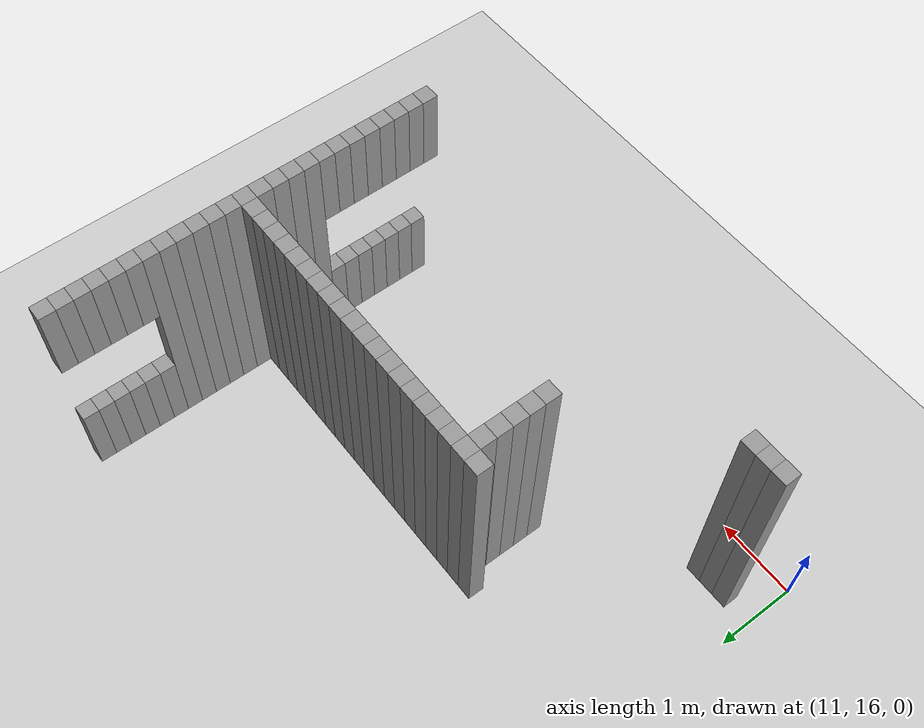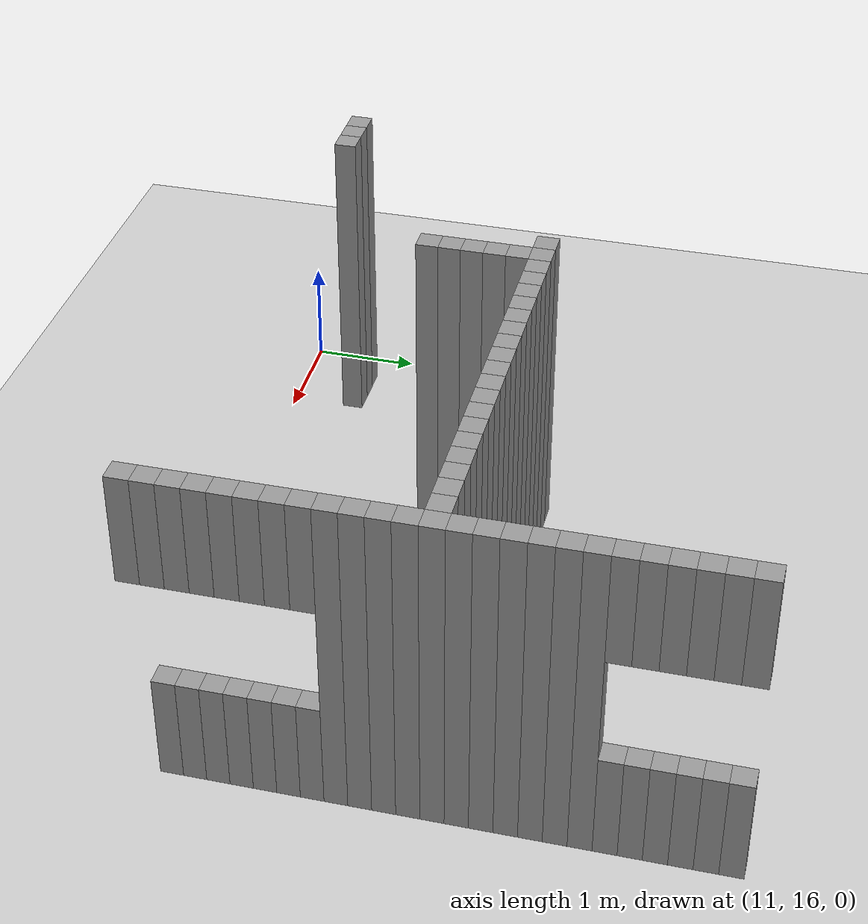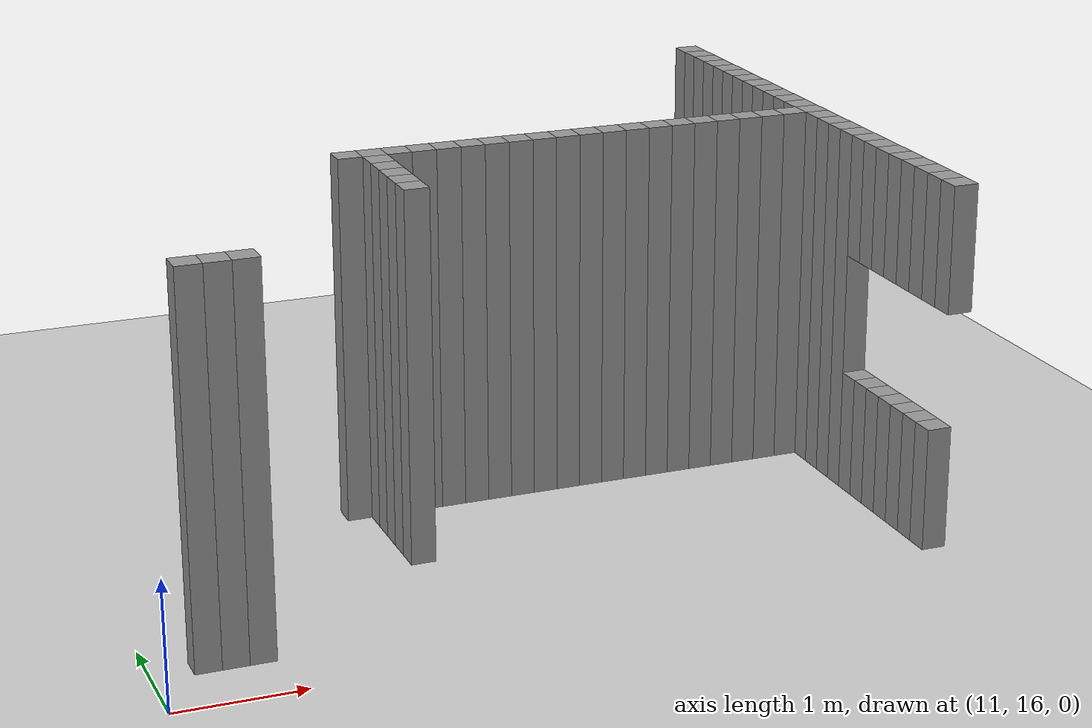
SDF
<sdf version="1.7">
 <world name="default">
  <model name="ground_plane">
   <static>1</static>
   <link name="link">
    <collision name="collision">
     <geometry><plane><normal>0 0 1</normal><size>100 100</size></plane></geometry>
     <surface>
      <contact><collide_bitmask>65535</collide_bitmask></contact>
      <friction><ode><mu>100</mu><mu2>50</mu2></ode></friction>
     </surface>
    </collision>
    <visual name="visual">
     <cast_shadows>0</cast_shadows>
     <geometry><plane><normal>0 0 1</normal><size>100 100</size></plane></geometry>
     <material>
      <script><uri>file://media/materials/scripts/gazebo.material</uri><name>Gazebo/Grey</name></script>
     </material>
    </visual>
   </link>
  </model>
  <model name="05222">
   <pose>-1 -1 0 0 -0 0</pose>
   <link name="Wall_813">
    <collision name="Wall_813_Collision">
     <geometry><box><size>0.2 0.2 1.0</size></box></geometry>
     <pose>0 0 2.5 0 -0 0</pose>
    </collision>
    <visual name="Wall_813_Visual">
     <pose>0 0 2.5 0 -0 0</pose>
     <geometry><box><size>0.2 0.2 1.0</size></box></geometry>
     <material>
      <script><uri>file://media/materials/scripts/gazebo.material</uri><name>Gazebo/Grey</name></script>
      <ambient>1 1 1 1</ambient>
     </material>
     <meta><layer>0</layer></meta>
    </visual>
    <pose>18.2 17.400000000000002 0 0 -0 0</pose>
   </link>
   <link name="Window_812">
    <collision name="Window_812_Collision">
     <geometry><box><size>0.2 0.2 1.0</size></box></geometry>
     <pose>0 0 1.5 0 -0 0</pose>
    </collision>
    <visual name="Wall_813_Visual">
     <pose>0 0 2.5 0 -0 0</pose>
     <geometry><box><size>0.2 0.2 1.0</size></box></geometry>
     <material>
      <script><uri>file://media/materials/scripts/gazebo.material</uri><name>Gazebo/Grey</name></script>
      <ambient>1 1 1 1</ambient>
     </material>
     <meta><layer>0</layer></meta>
    </visual>
    <pose>18.2 17.400000000000002 0 0 -0 0</pose>
   </link>
   <link name="Wall_843">
    <collision name="Wall_843_Collision">
     <geometry><box><size>0.2 0.2 3</size></box></geometry>
     <pose>0 0 1.5 0 -0 0</pose>
    </collision>
    <visual name="Wall_843_Visual">
     <pose>0 0 1.5 0 -0 0</pose>
     <geometry><box><size>0.2 0.2 3</size></box></geometry>
     <material>
      <script><uri>file://media/materials/scripts/gazebo.material</uri><name>Gazebo/Grey</name></script>
      <ambient>1 1 1 1</ambient>
     </material>
     <meta><layer>0</layer></meta>
    </visual>
    <pose>12.4 17.6 0 0 -0 0</pose>
   </link>
   <link name="Wall_844">
    <collision name="Wall_844_Collision">
     <geometry><box><size>0.2 0.2 3</size></box></geometry>
     <pose>0 0 1.5 0 -0 0</pose>
    </collision>
    <visual name="Wall_844_Visual">
     <pose>0 0 1.5 0 -0 0</pose>
     <geometry><box><size>0.2 0.2 3</size></box></geometry>
     <material>
      <script><uri>file://media/materials/scripts/gazebo.material</uri><name>Gazebo/Grey</name></script>
      <ambient>1 1 1 1</ambient>
     </material>
     <meta><layer>0</layer></meta>
    </visual>
    <pose>12.600000000000001 17.6 0 0 -0 0</pose>
   </link>
   <link name="Wall_845">
    <collision name="Wall_845_Collision">
     <geometry><box><size>0.2 0.2 3</size></box></geometry>
     <pose>0 0 1.5 0 -0 0</pose>
    </collision>
    <visual name="Wall_845_Visual">
     <pose>0 0 1.5 0 -0 0</pose>
     <geometry><box><size>0.2 0.2 3</size></box></geometry>
     <material>
      <script><uri>file://media/materials/scripts/gazebo.material</uri><name>Gazebo/Grey</name></script>
      <ambient>1 1 1 1</ambient>
     </material>
     <meta><layer>0</layer></meta>
    </visual>
    <pose>12.8 17.6 0 0 -0 0</pose>
   </link>
   <link name="Wall_846">
    <collision name="Wall_846_Collision">
     <geometry><box><size>0.2 0.2 1.0</size></box></geometry>
     <pose>0 0 0.5 0 -0 0</pose>
    </collision>
    <visual name="Wall_846_Visual">
     <pose>0 0 0.5 0 -0 0</pose>
     <geometry><box><size>0.2 0.2 1.0</size></box></geometry>
     <material>
      <script><uri>file://media/materials/scripts/gazebo.material</uri><name>Gazebo/Grey</name></script>
      <ambient>1 1 1 1</ambient>
     </material>
     <meta><layer>0</layer></meta>
    </visual>
    <pose>18.2 17.6 0 0 -0 0</pose>
   </link>
   <link name="Wall_847">
    <collision name="Wall_847_Collision">
     <geometry><box><size>0.2 0.2 1.0</size></box></geometry>
     <pose>0 0 2.5 0 -0 0</pose>
    </collision>
    <visual name="Wall_847_Visual">
     <pose>0 0 2.5 0 -0 0</pose>
     <geometry><box><size>0.2 0.2 1.0</size></box></geometry>
     <material>
      <script><uri>file://media/materials/scripts/gazebo.material</uri><name>Gazebo/Grey</name></script>
      <ambient>1 1 1 1</ambient>
     </material>
     <meta><layer>0</layer></meta>
    </visual>
    <pose>18.2 17.6 0 0 -0 0</pose>
   </link>
   <link name="Window_846">
    <collision name="Window_846_Collision">
     <geometry><box><size>0.2 0.2 1.0</size></box></geometry>
     <pose>0 0 1.5 0 -0 0</pose>
    </collision>
    <visual name="Wall_847_Visual">
     <pose>0 0 2.5 0 -0 0</pose>
     <geometry><box><size>0.2 0.2 1.0</size></box></geometry>
     <material>
      <script><uri>file://media/materials/scripts/gazebo.material</uri><name>Gazebo/Grey</name></script>
      <ambient>1 1 1 1</ambient>
     </material>
     <meta><layer>0</layer></meta>
    </visual>
    <pose>18.2 17.6 0 0 -0 0</pose>
   </link>
   <link name="Wall_867">
    <collision name="Wall_867_Collision">
     <geometry><box><size>0.2 0.2 1.0</size></box></geometry>
     <pose>0 0 0.5 0 -0 0</pose>
    </collision>
    <visual name="Wall_867_Visual">
     <pose>0 0 0.5 0 -0 0</pose>
     <geometry><box><size>0.2 0.2 1.0</size></box></geometry>
     <material>
      <script><uri>file://media/materials/scripts/gazebo.material</uri><name>Gazebo/Grey</name></script>
      <ambient>1 1 1 1</ambient>
     </material>
     <meta><layer>0</layer></meta>
    </visual>
    <pose>18.2 17.8 0 0 -0 0</pose>
   </link>
   <link name="Wall_868">
    <collision name="Wall_868_Collision">
     <geometry><box><size>0.2 0.2 1.0</size></box></geometry>
     <pose>0 0 2.5 0 -0 0</pose>
    </collision>
    <visual name="Wall_868_Visual">
     <pose>0 0 2.5 0 -0 0</pose>
     <geometry><box><size>0.2 0.2 1.0</size></box></geometry>
     <material>
      <script><uri>file://media/materials/scripts/gazebo.material</uri><name>Gazebo/Grey</name></script>
      <ambient>1 1 1 1</ambient>
     </material>
     <meta><layer>0</layer></meta>
    </visual>
    <pose>18.2 17.8 0 0 -0 0</pose>
   </link>
   <link name="Window_867">
    <collision name="Window_867_Collision">
     <geometry><box><size>0.2 0.2 1.0</size></box></geometry>
     <pose>0 0 1.5 0 -0 0</pose>
    </collision>
    <visual name="Wall_868_Visual">
     <pose>0 0 2.5 0 -0 0</pose>
     <geometry><box><size>0.2 0.2 1.0</size></box></geometry>
     <material>
      <script><uri>file://media/materials/scripts/gazebo.material</uri><name>Gazebo/Grey</name></script>
      <ambient>1 1 1 1</ambient>
     </material>
     <meta><layer>0</layer></meta>
    </visual>
    <pose>18.2 17.8 0 0 -0 0</pose>
   </link>
   <link name="Wall_870">
    <collision name="Wall_870_Collision">
     <geometry><box><size>0.2 0.2 1.0</size></box></geometry>
     <pose>0 0 0.5 0 -0 0</pose>
    </collision>
    <visual name="Wall_870_Visual">
     <pose>0 0 0.5 0 -0 0</pose>
     <geometry><box><size>0.2 0.2 1.0</size></box></geometry>
     <material>
      <script><uri>file://media/materials/scripts/gazebo.material</uri><name>Gazebo/Grey</name></script>
      <ambient>1 1 1 1</ambient>
     </material>
     <meta><layer>0</layer></meta>
    </visual>
    <pose>18.2 18.0 0 0 -0 0</pose>
   </link>
   <link name="Wall_871">
    <collision name="Wall_871_Collision">
     <geometry><box><size>0.2 0.2 1.0</size></box></geometry>
     <pose>0 0 2.5 0 -0 0</pose>
    </collision>
    <visual name="Wall_871_Visual">
     <pose>0 0 2.5 0 -0 0</pose>
     <geometry><box><size>0.2 0.2 1.0</size></box></geometry>
     <material>
      <script><uri>file://media/materials/scripts/gazebo.material</uri><name>Gazebo/Grey</name></script>
      <ambient>1 1 1 1</ambient>
     </material>
     <meta><layer>0</layer></meta>
    </visual>
    <pose>18.2 18.0 0 0 -0 0</pose>
   </link>
   <link name="Window_870">
    <collision name="Window_870_Collision">
     <geometry><box><size>0.2 0.2 1.0</size></box></geometry>
     <pose>0 0 1.5 0 -0 0</pose>
    </collision>
    <visual name="Wall_871_Visual">
     <pose>0 0 2.5 0 -0 0</pose>
     <geometry><box><size>0.2 0.2 1.0</size></box></geometry>
     <material>
      <script><uri>file://media/materials/scripts/gazebo.material</uri><name>Gazebo/Grey</name></script>
      <ambient>1 1 1 1</ambient>
     </material>
     <meta><layer>0</layer></meta>
    </visual>
    <pose>18.2 18.0 0 0 -0 0</pose>
   </link>
   <link name="Wall_873">
    <collision name="Wall_873_Collision">
     <geometry><box><size>0.2 0.2 1.0</size></box></geometry>
     <pose>0 0 0.5 0 -0 0</pose>
    </collision>
    <visual name="Wall_873_Visual">
     <pose>0 0 0.5 0 -0 0</pose>
     <geometry><box><size>0.2 0.2 1.0</size></box></geometry>
     <material>
      <script><uri>file://media/materials/scripts/gazebo.material</uri><name>Gazebo/Grey</name></script>
      <ambient>1 1 1 1</ambient>
     </material>
     <meta><layer>0</layer></meta>
    </visual>
    <pose>18.2 18.2 0 0 -0 0</pose>
   </link>
   <link name="Wall_874">
    <collision name="Wall_874_Collision">
     <geometry><box><size>0.2 0.2 1.0</size></box></geometry>
     <pose>0 0 2.5 0 -0 0</pose>
    </collision>
    <visual name="Wall_874_Visual">
     <pose>0 0 2.5 0 -0 0</pose>
     <geometry><box><size>0.2 0.2 1.0</size></box></geometry>
     <material>
      <script><uri>file://media/materials/scripts/gazebo.material</uri><name>Gazebo/Grey</name></script>
      <ambient>1 1 1 1</ambient>
     </material>
     <meta><layer>0</layer></meta>
    </visual>
    <pose>18.2 18.2 0 0 -0 0</pose>
   </link>
   <link name="Window_873">
    <collision name="Window_873_Collision">
     <geometry><box><size>0.2 0.2 1.0</size></box></geometry>
     <pose>0 0 1.5 0 -0 0</pose>
    </collision>
    <visual name="Wall_874_Visual">
     <pose>0 0 2.5 0 -0 0</pose>
     <geometry><box><size>0.2 0.2 1.0</size></box></geometry>
     <material>
      <script><uri>file://media/materials/scripts/gazebo.material</uri><name>Gazebo/Grey</name></script>
      <ambient>1 1 1 1</ambient>
     </material>
     <meta><layer>0</layer></meta>
    </visual>
    <pose>18.2 18.2 0 0 -0 0</pose>
   </link>
   <link name="Wall_876">
    <collision name="Wall_876_Collision">
     <geometry><box><size>0.2 0.2 1.0</size></box></geometry>
     <pose>0 0 0.5 0 -0 0</pose>
    </collision>
    <visual name="Wall_876_Visual">
     <pose>0 0 0.5 0 -0 0</pose>
     <geometry><box><size>0.2 0.2 1.0</size></box></geometry>
     <material>
      <script><uri>file://media/materials/scripts/gazebo.material</uri><name>Gazebo/Grey</name></script>
      <ambient>1 1 1 1</ambient>
     </material>
     <meta><layer>0</layer></meta>
    </visual>
    <pose>18.2 18.400000000000002 0 0 -0 0</pose>
   </link>
   <link name="Wall_877">
    <collision name="Wall_877_Collision">
     <geometry><box><size>0.2 0.2 1.0</size></box></geometry>
     <pose>0 0 2.5 0 -0 0</pose>
    </collision>
    <visual name="Wall_877_Visual">
     <pose>0 0 2.5 0 -0 0</pose>
     <geometry><box><size>0.2 0.2 1.0</size></box></geometry>
     <material>
      <script><uri>file://media/materials/scripts/gazebo.material</uri><name>Gazebo/Grey</name></script>
      <ambient>1 1 1 1</ambient>
     </material>
     <meta><layer>0</layer></meta>
    </visual>
    <pose>18.2 18.400000000000002 0 0 -0 0</pose>
   </link>
   <link name="Window_876">
    <collision name="Window_876_Collision">
     <geometry><box><size>0.2 0.2 1.0</size></box></geometry>
     <pose>0 0 1.5 0 -0 0</pose>
    </collision>
    <visual name="Wall_877_Visual">
     <pose>0 0 2.5 0 -0 0</pose>
     <geometry><box><size>0.2 0.2 1.0</size></box></geometry>
     <material>
      <script><uri>file://media/materials/scripts/gazebo.material</uri><name>Gazebo/Grey</name></script>
      <ambient>1 1 1 1</ambient>
     </material>
     <meta><layer>0</layer></meta>
    </visual>
    <pose>18.2 18.400000000000002 0 0 -0 0</pose>
   </link>
   <link name="Wall_879">
    <collision name="Wall_879_Collision">
     <geometry><box><size>0.2 0.2 1.0</size></box></geometry>
     <pose>0 0 0.5 0 -0 0</pose>
    </collision>
    <visual name="Wall_879_Visual">
     <pose>0 0 0.5 0 -0 0</pose>
     <geometry><box><size>0.2 0.2 1.0</size></box></geometry>
     <material>
      <script><uri>file://media/materials/scripts/gazebo.material</uri><name>Gazebo/Grey</name></script>
      <ambient>1 1 1 1</ambient>
     </material>
     <meta><layer>0</layer></meta>
    </visual>
    <pose>18.2 18.6 0 0 -0 0</pose>
   </link>
   <link name="Wall_880">
    <collision name="Wall_880_Collision">
     <geometry><box><size>0.2 0.2 1.0</size></box></geometry>
     <pose>0 0 2.5 0 -0 0</pose>
    </collision>
    <visual name="Wall_880_Visual">
     <pose>0 0 2.5 0 -0 0</pose>
     <geometry><box><size>0.2 0.2 1.0</size></box></geometry>
     <material>
      <script><uri>file://media/materials/scripts/gazebo.material</uri><name>Gazebo/Grey</name></script>
      <ambient>1 1 1 1</ambient>
     </material>
     <meta><layer>0</layer></meta>
    </visual>
    <pose>18.2 18.6 0 0 -0 0</pose>
   </link>
   <link name="Window_879">
    <collision name="Window_879_Collision">
     <geometry><box><size>0.2 0.2 1.0</size></box></geometry>
     <pose>0 0 1.5 0 -0 0</pose>
    </collision>
    <visual name="Wall_880_Visual">
     <pose>0 0 2.5 0 -0 0</pose>
     <geometry><box><size>0.2 0.2 1.0</size></box></geometry>
     <material>
      <script><uri>file://media/materials/scripts/gazebo.material</uri><name>Gazebo/Grey</name></script>
      <ambient>1 1 1 1</ambient>
     </material>
     <meta><layer>0</layer></meta>
    </visual>
    <pose>18.2 18.6 0 0 -0 0</pose>
   </link>
   <link name="Wall_882">
    <collision name="Wall_882_Collision">
     <geometry><box><size>0.2 0.2 3</size></box></geometry>
     <pose>0 0 1.5 0 -0 0</pose>
    </collision>
    <visual name="Wall_882_Visual">
     <pose>0 0 1.5 0 -0 0</pose>
     <geometry><box><size>0.2 0.2 3</size></box></geometry>
     <material>
      <script><uri>file://media/materials/scripts/gazebo.material</uri><name>Gazebo/Grey</name></script>
      <ambient>1 1 1 1</ambient>
     </material>
     <meta><layer>0</layer></meta>
    </visual>
    <pose>14.4 18.8 0 0 -0 0</pose>
   </link>
   <link name="Wall_883">
    <collision name="Wall_883_Collision">
     <geometry><box><size>0.2 0.2 1.0</size></box></geometry>
     <pose>0 0 0.5 0 -0 0</pose>
    </collision>
    <visual name="Wall_883_Visual">
     <pose>0 0 0.5 0 -0 0</pose>
     <geometry><box><size>0.2 0.2 1.0</size></box></geometry>
     <material>
      <script><uri>file://media/materials/scripts/gazebo.material</uri><name>Gazebo/Grey</name></script>
      <ambient>1 1 1 1</ambient>
     </material>
     <meta><layer>0</layer></meta>
    </visual>
    <pose>18.2 18.8 0 0 -0 0</pose>
   </link>
   <link name="Wall_884">
    <collision name="Wall_884_Collision">
     <geometry><box><size>0.2 0.2 1.0</size></box></geometry>
     <pose>0 0 2.5 0 -0 0</pose>
    </collision>
    <visual name="Wall_884_Visual">
     <pose>0 0 2.5 0 -0 0</pose>
     <geometry><box><size>0.2 0.2 1.0</size></box></geometry>
     <material>
      <script><uri>file://media/materials/scripts/gazebo.material</uri><name>Gazebo/Grey</name></script>
      <ambient>1 1 1 1</ambient>
     </material>
     <meta><layer>0</layer></meta>
    </visual>
    <pose>18.2 18.8 0 0 -0 0</pose>
   </link>
   <link name="Window_883">
    <collision name="Window_883_Collision">
     <geometry><box><size>0.2 0.2 1.0</size></box></geometry>
     <pose>0 0 1.5 0 -0 0</pose>
    </collision>
    <visual name="Wall_884_Visual">
     <pose>0 0 2.5 0 -0 0</pose>
     <geometry><box><size>0.2 0.2 1.0</size></box></geometry>
     <material>
      <script><uri>file://media/materials/scripts/gazebo.material</uri><name>Gazebo/Grey</name></script>
      <ambient>1 1 1 1</ambient>
     </material>
     <meta><layer>0</layer></meta>
    </visual>
    <pose>18.2 18.8 0 0 -0 0</pose>
   </link>
   <link name="Wall_886">
    <collision name="Wall_886_Collision">
     <geometry><box><size>0.2 0.2 3</size></box></geometry>
     <pose>0 0 1.5 0 -0 0</pose>
    </collision>
    <visual name="Wall_886_Visual">
     <pose>0 0 1.5 0 -0 0</pose>
     <geometry><box><size>0.2 0.2 3</size></box></geometry>
     <material>
      <script><uri>file://media/materials/scripts/gazebo.material</uri><name>Gazebo/Grey</name></script>
      <ambient>1 1 1 1</ambient>
     </material>
     <meta><layer>0</layer></meta>
    </visual>
    <pose>14.4 19.0 0 0 -0 0</pose>
   </link>
   <link name="Wall_887">
    <collision name="Wall_887_Collision">
     <geometry><box><size>0.2 0.2 3</size></box></geometry>
     <pose>0 0 1.5 0 -0 0</pose>
    </collision>
    <visual name="Wall_887_Visual">
     <pose>0 0 1.5 0 -0 0</pose>
     <geometry><box><size>0.2 0.2 3</size></box></geometry>
     <material>
      <script><uri>file://media/materials/scripts/gazebo.material</uri><name>Gazebo/Grey</name></script>
      <ambient>1 1 1 1</ambient>
     </material>
     <meta><layer>0</layer></meta>
    </visual>
    <pose>18.2 19.0 0 0 -0 0</pose>
   </link>
   <link name="Wall_889">
    <collision name="Wall_889_Collision">
     <geometry><box><size>0.2 0.2 3</size></box></geometry>
     <pose>0 0 1.5 0 -0 0</pose>
    </collision>
    <visual name="Wall_889_Visual">
     <pose>0 0 1.5 0 -0 0</pose>
     <geometry><box><size>0.2 0.2 3</size></box></geometry>
     <material>
      <script><uri>file://media/materials/scripts/gazebo.material</uri><name>Gazebo/Grey</name></script>
      <ambient>1 1 1 1</ambient>
     </material>
     <meta><layer>0</layer></meta>
    </visual>
    <pose>14.4 19.200000000000003 0 0 -0 0</pose>
   </link>
   <link name="Wall_890">
    <collision name="Wall_890_Collision">
     <geometry><box><size>0.2 0.2 3</size></box></geometry>
     <pose>0 0 1.5 0 -0 0</pose>
    </collision>
    <visual name="Wall_890_Visual">
     <pose>0 0 1.5 0 -0 0</pose>
     <geometry><box><size>0.2 0.2 3</size></box></geometry>
     <material>
      <script><uri>file://media/materials/scripts/gazebo.material</uri><name>Gazebo/Grey</name></script>
      <ambient>1 1 1 1</ambient>
     </material>
     <meta><layer>0</layer></meta>
    </visual>
    <pose>18.2 19.200000000000003 0 0 -0 0</pose>
   </link>
   <link name="Wall_892">
    <collision name="Wall_892_Collision">
     <geometry><box><size>0.2 0.2 3</size></box></geometry>
     <pose>0 0 1.5 0 -0 0</pose>
    </collision>
    <visual name="Wall_892_Visual">
     <pose>0 0 1.5 0 -0 0</pose>
     <geometry><box><size>0.2 0.2 3</size></box></geometry>
     <material>
      <script><uri>file://media/materials/scripts/gazebo.material</uri><name>Gazebo/Grey</name></script>
      <ambient>1 1 1 1</ambient>
     </material>
     <meta><layer>0</layer></meta>
    </visual>
    <pose>14.4 19.400000000000002 0 0 -0 0</pose>
   </link>
   <link name="Wall_893">
    <collision name="Wall_893_Collision">
     <geometry><box><size>0.2 0.2 3</size></box></geometry>
     <pose>0 0 1.5 0 -0 0</pose>
    </collision>
    <visual name="Wall_893_Visual">
     <pose>0 0 1.5 0 -0 0</pose>
     <geometry><box><size>0.2 0.2 3</size></box></geometry>
     <material>
      <script><uri>file://media/materials/scripts/gazebo.material</uri><name>Gazebo/Grey</name></script>
      <ambient>1 1 1 1</ambient>
     </material>
     <meta><layer>0</layer></meta>
    </visual>
    <pose>18.2 19.400000000000002 0 0 -0 0</pose>
   </link>
   <link name="Wall_896">
    <collision name="Wall_896_Collision">
     <geometry><box><size>0.2 0.2 3</size></box></geometry>
     <pose>0 0 1.5 0 -0 0</pose>
    </collision>
    <visual name="Wall_896_Visual">
     <pose>0 0 1.5 0 -0 0</pose>
     <geometry><box><size>0.2 0.2 3</size></box></geometry>
     <material>
      <script><uri>file://media/materials/scripts/gazebo.material</uri><name>Gazebo/Grey</name></script>
      <ambient>1 1 1 1</ambient>
     </material>
     <meta><layer>0</layer></meta>
    </visual>
    <pose>14.4 19.6 0 0 -0 0</pose>
   </link>
   <link name="Wall_897">
    <collision name="Wall_897_Collision">
     <geometry><box><size>0.2 0.2 3</size></box></geometry>
     <pose>0 0 1.5 0 -0 0</pose>
    </collision>
    <visual name="Wall_897_Visual">
     <pose>0 0 1.5 0 -0 0</pose>
     <geometry><box><size>0.2 0.2 3</size></box></geometry>
     <material>
      <script><uri>file://media/materials/scripts/gazebo.material</uri><name>Gazebo/Grey</name></script>
      <ambient>1 1 1 1</ambient>
     </material>
     <meta><layer>0</layer></meta>
    </visual>
    <pose>18.2 19.6 0 0 -0 0</pose>
   </link>
   <link name="Wall_924">
    <collision name="Wall_924_Collision">
     <geometry><box><size>0.2 0.2 3</size></box></geometry>
     <pose>0 0 1.5 0 -0 0</pose>
    </collision>
    <visual name="Wall_924_Visual">
     <pose>0 0 1.5 0 -0 0</pose>
     <geometry><box><size>0.2 0.2 3</size></box></geometry>
     <material>
      <script><uri>file://media/materials/scripts/gazebo.material</uri><name>Gazebo/Grey</name></script>
      <ambient>1 1 1 1</ambient>
     </material>
     <meta><layer>0</layer></meta>
    </visual>
    <pose>14.200000000000001 19.8 0 0 -0 0</pose>
   </link>
   <link name="Wall_925">
    <collision name="Wall_925_Collision">
     <geometry><box><size>0.2 0.2 3</size></box></geometry>
     <pose>0 0 1.5 0 -0 0</pose>
    </collision>
    <visual name="Wall_925_Visual">
     <pose>0 0 1.5 0 -0 0</pose>
     <geometry><box><size>0.2 0.2 3</size></box></geometry>
     <material>
      <script><uri>file://media/materials/scripts/gazebo.material</uri><name>Gazebo/Grey</name></script>
      <ambient>1 1 1 1</ambient>
     </material>
     <meta><layer>0</layer></meta>
    </visual>
    <pose>14.4 19.8 0 0 -0 0</pose>
   </link>
   <link name="Wall_926">
    <collision name="Wall_926_Collision">
     <geometry><box><size>0.2 0.2 3</size></box></geometry>
     <pose>0 0 1.5 0 -0 0</pose>
    </collision>
    <visual name="Wall_926_Visual">
     <pose>0 0 1.5 0 -0 0</pose>
     <geometry><box><size>0.2 0.2 3</size></box></geometry>
     <material>
      <script><uri>file://media/materials/scripts/gazebo.material</uri><name>Gazebo/Grey</name></script>
      <ambient>1 1 1 1</ambient>
     </material>
     <meta><layer>0</layer></meta>
    </visual>
    <pose>14.600000000000001 19.8 0 0 -0 0</pose>
   </link>
   <link name="Wall_927">
    <collision name="Wall_927_Collision">
     <geometry><box><size>0.2 0.2 3</size></box></geometry>
     <pose>0 0 1.5 0 -0 0</pose>
    </collision>
    <visual name="Wall_927_Visual">
     <pose>0 0 1.5 0 -0 0</pose>
     <geometry><box><size>0.2 0.2 3</size></box></geometry>
     <material>
      <script><uri>file://media/materials/scripts/gazebo.material</uri><name>Gazebo/Grey</name></script>
      <ambient>1 1 1 1</ambient>
     </material>
     <meta><layer>0</layer></meta>
    </visual>
    <pose>14.8 19.8 0 0 -0 0</pose>
   </link>
   <link name="Wall_928">
    <collision name="Wall_928_Collision">
     <geometry><box><size>0.2 0.2 3</size></box></geometry>
     <pose>0 0 1.5 0 -0 0</pose>
    </collision>
    <visual name="Wall_928_Visual">
     <pose>0 0 1.5 0 -0 0</pose>
     <geometry><box><size>0.2 0.2 3</size></box></geometry>
     <material>
      <script><uri>file://media/materials/scripts/gazebo.material</uri><name>Gazebo/Grey</name></script>
      <ambient>1 1 1 1</ambient>
     </material>
     <meta><layer>0</layer></meta>
    </visual>
    <pose>15.0 19.8 0 0 -0 0</pose>
   </link>
   <link name="Wall_929">
    <collision name="Wall_929_Collision">
     <geometry><box><size>0.2 0.2 3</size></box></geometry>
     <pose>0 0 1.5 0 -0 0</pose>
    </collision>
    <visual name="Wall_929_Visual">
     <pose>0 0 1.5 0 -0 0</pose>
     <geometry><box><size>0.2 0.2 3</size></box></geometry>
     <material>
      <script><uri>file://media/materials/scripts/gazebo.material</uri><name>Gazebo/Grey</name></script>
      <ambient>1 1 1 1</ambient>
     </material>
     <meta><layer>0</layer></meta>
    </visual>
    <pose>15.200000000000001 19.8 0 0 -0 0</pose>
   </link>
   <link name="Wall_930">
    <collision name="Wall_930_Collision">
     <geometry><box><size>0.2 0.2 3</size></box></geometry>
     <pose>0 0 1.5 0 -0 0</pose>
    </collision>
    <visual name="Wall_930_Visual">
     <pose>0 0 1.5 0 -0 0</pose>
     <geometry><box><size>0.2 0.2 3</size></box></geometry>
     <material>
      <script><uri>file://media/materials/scripts/gazebo.material</uri><name>Gazebo/Grey</name></script>
      <ambient>1 1 1 1</ambient>
     </material>
     <meta><layer>0</layer></meta>
    </visual>
    <pose>15.4 19.8 0 0 -0 0</pose>
   </link>
   <link name="Wall_931">
    <collision name="Wall_931_Collision">
     <geometry><box><size>0.2 0.2 3</size></box></geometry>
     <pose>0 0 1.5 0 -0 0</pose>
    </collision>
    <visual name="Wall_931_Visual">
     <pose>0 0 1.5 0 -0 0</pose>
     <geometry><box><size>0.2 0.2 3</size></box></geometry>
     <material>
      <script><uri>file://media/materials/scripts/gazebo.material</uri><name>Gazebo/Grey</name></script>
      <ambient>1 1 1 1</ambient>
     </material>
     <meta><layer>0</layer></meta>
    </visual>
    <pose>15.600000000000001 19.8 0 0 -0 0</pose>
   </link>
   <link name="Wall_932">
    <collision name="Wall_932_Collision">
     <geometry><box><size>0.2 0.2 3</size></box></geometry>
     <pose>0 0 1.5 0 -0 0</pose>
    </collision>
    <visual name="Wall_932_Visual">
     <pose>0 0 1.5 0 -0 0</pose>
     <geometry><box><size>0.2 0.2 3</size></box></geometry>
     <material>
      <script><uri>file://media/materials/scripts/gazebo.material</uri><name>Gazebo/Grey</name></script>
      <ambient>1 1 1 1</ambient>
     </material>
     <meta><layer>0</layer></meta>
    </visual>
    <pose>15.8 19.8 0 0 -0 0</pose>
   </link>
   <link name="Wall_933">
    <collision name="Wall_933_Collision">
     <geometry><box><size>0.2 0.2 3</size></box></geometry>
     <pose>0 0 1.5 0 -0 0</pose>
    </collision>
    <visual name="Wall_933_Visual">
     <pose>0 0 1.5 0 -0 0</pose>
     <geometry><box><size>0.2 0.2 3</size></box></geometry>
     <material>
      <script><uri>file://media/materials/scripts/gazebo.material</uri><name>Gazebo/Grey</name></script>
      <ambient>1 1 1 1</ambient>
     </material>
     <meta><layer>0</layer></meta>
    </visual>
    <pose>16.0 19.8 0 0 -0 0</pose>
   </link>
   <link name="Wall_934">
    <collision name="Wall_934_Collision">
     <geometry><box><size>0.2 0.2 3</size></box></geometry>
     <pose>0 0 1.5 0 -0 0</pose>
    </collision>
    <visual name="Wall_934_Visual">
     <pose>0 0 1.5 0 -0 0</pose>
     <geometry><box><size>0.2 0.2 3</size></box></geometry>
     <material>
      <script><uri>file://media/materials/scripts/gazebo.material</uri><name>Gazebo/Grey</name></script>
      <ambient>1 1 1 1</ambient>
     </material>
     <meta><layer>0</layer></meta>
    </visual>
    <pose>16.2 19.8 0 0 -0 0</pose>
   </link>
   <link name="Wall_935">
    <collision name="Wall_935_Collision">
     <geometry><box><size>0.2 0.2 3</size></box></geometry>
     <pose>0 0 1.5 0 -0 0</pose>
    </collision>
    <visual name="Wall_935_Visual">
     <pose>0 0 1.5 0 -0 0</pose>
     <geometry><box><size>0.2 0.2 3</size></box></geometry>
     <material>
      <script><uri>file://media/materials/scripts/gazebo.material</uri><name>Gazebo/Grey</name></script>
      <ambient>1 1 1 1</ambient>
     </material>
     <meta><layer>0</layer></meta>
    </visual>
    <pose>16.400000000000002 19.8 0 0 -0 0</pose>
   </link>
   <link name="Wall_936">
    <collision name="Wall_936_Collision">
     <geometry><box><size>0.2 0.2 3</size></box></geometry>
     <pose>0 0 1.5 0 -0 0</pose>
    </collision>
    <visual name="Wall_936_Visual">
     <pose>0 0 1.5 0 -0 0</pose>
     <geometry><box><size>0.2 0.2 3</size></box></geometry>
     <material>
      <script><uri>file://media/materials/scripts/gazebo.material</uri><name>Gazebo/Grey</name></script>
      <ambient>1 1 1 1</ambient>
     </material>
     <meta><layer>0</layer></meta>
    </visual>
    <pose>16.6 19.8 0 0 -0 0</pose>
   </link>
   <link name="Wall_937">
    <collision name="Wall_937_Collision">
     <geometry><box><size>0.2 0.2 3</size></box></geometry>
     <pose>0 0 1.5 0 -0 0</pose>
    </collision>
    <visual name="Wall_937_Visual">
     <pose>0 0 1.5 0 -0 0</pose>
     <geometry><box><size>0.2 0.2 3</size></box></geometry>
     <material>
      <script><uri>file://media/materials/scripts/gazebo.material</uri><name>Gazebo/Grey</name></script>
      <ambient>1 1 1 1</ambient>
     </material>
     <meta><layer>0</layer></meta>
    </visual>
    <pose>16.8 19.8 0 0 -0 0</pose>
   </link>
   <link name="Wall_938">
    <collision name="Wall_938_Collision">
     <geometry><box><size>0.2 0.2 3</size></box></geometry>
     <pose>0 0 1.5 0 -0 0</pose>
    </collision>
    <visual name="Wall_938_Visual">
     <pose>0 0 1.5 0 -0 0</pose>
     <geometry><box><size>0.2 0.2 3</size></box></geometry>
     <material>
      <script><uri>file://media/materials/scripts/gazebo.material</uri><name>Gazebo/Grey</name></script>
      <ambient>1 1 1 1</ambient>
     </material>
     <meta><layer>0</layer></meta>
    </visual>
    <pose>17.0 19.8 0 0 -0 0</pose>
   </link>
   <link name="Wall_939">
    <collision name="Wall_939_Collision">
     <geometry><box><size>0.2 0.2 3</size></box></geometry>
     <pose>0 0 1.5 0 -0 0</pose>
    </collision>
    <visual name="Wall_939_Visual">
     <pose>0 0 1.5 0 -0 0</pose>
     <geometry><box><size>0.2 0.2 3</size></box></geometry>
     <material>
      <script><uri>file://media/materials/scripts/gazebo.material</uri><name>Gazebo/Grey</name></script>
      <ambient>1 1 1 1</ambient>
     </material>
     <meta><layer>0</layer></meta>
    </visual>
    <pose>17.2 19.8 0 0 -0 0</pose>
   </link>
   <link name="Wall_940">
    <collision name="Wall_940_Collision">
     <geometry><box><size>0.2 0.2 3</size></box></geometry>
     <pose>0 0 1.5 0 -0 0</pose>
    </collision>
    <visual name="Wall_940_Visual">
     <pose>0 0 1.5 0 -0 0</pose>
     <geometry><box><size>0.2 0.2 3</size></box></geometry>
     <material>
      <script><uri>file://media/materials/scripts/gazebo.material</uri><name>Gazebo/Grey</name></script>
      <ambient>1 1 1 1</ambient>
     </material>
     <meta><layer>0</layer></meta>
    </visual>
    <pose>17.400000000000002 19.8 0 0 -0 0</pose>
   </link>
   <link name="Wall_941">
    <collision name="Wall_941_Collision">
     <geometry><box><size>0.2 0.2 3</size></box></geometry>
     <pose>0 0 1.5 0 -0 0</pose>
    </collision>
    <visual name="Wall_941_Visual">
     <pose>0 0 1.5 0 -0 0</pose>
     <geometry><box><size>0.2 0.2 3</size></box></geometry>
     <material>
      <script><uri>file://media/materials/scripts/gazebo.material</uri><name>Gazebo/Grey</name></script>
      <ambient>1 1 1 1</ambient>
     </material>
     <meta><layer>0</layer></meta>
    </visual>
    <pose>17.6 19.8 0 0 -0 0</pose>
   </link>
   <link name="Wall_942">
    <collision name="Wall_942_Collision">
     <geometry><box><size>0.2 0.2 3</size></box></geometry>
     <pose>0 0 1.5 0 -0 0</pose>
    </collision>
    <visual name="Wall_942_Visual">
     <pose>0 0 1.5 0 -0 0</pose>
     <geometry><box><size>0.2 0.2 3</size></box></geometry>
     <material>
      <script><uri>file://media/materials/scripts/gazebo.material</uri><name>Gazebo/Grey</name></script>
      <ambient>1 1 1 1</ambient>
     </material>
     <meta><layer>0</layer></meta>
    </visual>
    <pose>17.8 19.8 0 0 -0 0</pose>
   </link>
   <link name="Wall_943">
    <collision name="Wall_943_Collision">
     <geometry><box><size>0.2 0.2 3</size></box></geometry>
     <pose>0 0 1.5 0 -0 0</pose>
    </collision>
    <visual name="Wall_943_Visual">
     <pose>0 0 1.5 0 -0 0</pose>
     <geometry><box><size>0.2 0.2 3</size></box></geometry>
     <material>
      <script><uri>file://media/materials/scripts/gazebo.material</uri><name>Gazebo/Grey</name></script>
      <ambient>1 1 1 1</ambient>
     </material>
     <meta><layer>0</layer></meta>
    </visual>
    <pose>18.0 19.8 0 0 -0 0</pose>
   </link>
   <link name="Wall_944">
    <collision name="Wall_944_Collision">
     <geometry><box><size>0.2 0.2 3</size></box></geometry>
     <pose>0 0 1.5 0 -0 0</pose>
    </collision>
    <visual name="Wall_944_Visual">
     <pose>0 0 1.5 0 -0 0</pose>
     <geometry><box><size>0.2 0.2 3</size></box></geometry>
     <material>
      <script><uri>file://media/materials/scripts/gazebo.material</uri><name>Gazebo/Grey</name></script>
      <ambient>1 1 1 1</ambient>
     </material>
     <meta><layer>0</layer></meta>
    </visual>
    <pose>18.2 19.8 0 0 -0 0</pose>
   </link>
   <link name="Wall_949">
    <collision name="Wall_949_Collision">
     <geometry><box><size>0.2 0.2 3</size></box></geometry>
     <pose>0 0 1.5 0 -0 0</pose>
    </collision>
    <visual name="Wall_949_Visual">
     <pose>0 0 1.5 0 -0 0</pose>
     <geometry><box><size>0.2 0.2 3</size></box></geometry>
     <material>
      <script><uri>file://media/materials/scripts/gazebo.material</uri><name>Gazebo/Grey</name></script>
      <ambient>1 1 1 1</ambient>
     </material>
     <meta><layer>0</layer></meta>
    </visual>
    <pose>18.2 20.0 0 0 -0 0</pose>
   </link>
   <link name="Wall_954">
    <collision name="Wall_954_Collision">
     <geometry><box><size>0.2 0.2 3</size></box></geometry>
     <pose>0 0 1.5 0 -0 0</pose>
    </collision>
    <visual name="Wall_954_Visual">
     <pose>0 0 1.5 0 -0 0</pose>
     <geometry><box><size>0.2 0.2 3</size></box></geometry>
     <material>
      <script><uri>file://media/materials/scripts/gazebo.material</uri><name>Gazebo/Grey</name></script>
      <ambient>1 1 1 1</ambient>
     </material>
     <meta><layer>0</layer></meta>
    </visual>
    <pose>18.2 20.200000000000003 0 0 -0 0</pose>
   </link>
   <link name="Wall_960">
    <collision name="Wall_960_Collision">
     <geometry><box><size>0.2 0.2 3</size></box></geometry>
     <pose>0 0 1.5 0 -0 0</pose>
    </collision>
    <visual name="Wall_960_Visual">
     <pose>0 0 1.5 0 -0 0</pose>
     <geometry><box><size>0.2 0.2 3</size></box></geometry>
     <material>
      <script><uri>file://media/materials/scripts/gazebo.material</uri><name>Gazebo/Grey</name></script>
      <ambient>1 1 1 1</ambient>
     </material>
     <meta><layer>0</layer></meta>
    </visual>
    <pose>18.2 20.400000000000002 0 0 -0 0</pose>
   </link>
   <link name="Wall_966">
    <collision name="Wall_966_Collision">
     <geometry><box><size>0.2 0.2 3</size></box></geometry>
     <pose>0 0 1.5 0 -0 0</pose>
    </collision>
    <visual name="Wall_966_Visual">
     <pose>0 0 1.5 0 -0 0</pose>
     <geometry><box><size>0.2 0.2 3</size></box></geometry>
     <material>
      <script><uri>file://media/materials/scripts/gazebo.material</uri><name>Gazebo/Grey</name></script>
      <ambient>1 1 1 1</ambient>
     </material>
     <meta><layer>0</layer></meta>
    </visual>
    <pose>18.2 20.6 0 0 -0 0</pose>
   </link>
   <link name="Wall_972">
    <collision name="Wall_972_Collision">
     <geometry><box><size>0.2 0.2 3</size></box></geometry>
     <pose>0 0 1.5 0 -0 0</pose>
    </collision>
    <visual name="Wall_972_Visual">
     <pose>0 0 1.5 0 -0 0</pose>
     <geometry><box><size>0.2 0.2 3</size></box></geometry>
     <material>
      <script><uri>file://media/materials/scripts/gazebo.material</uri><name>Gazebo/Grey</name></script>
      <ambient>1 1 1 1</ambient>
     </material>
     <meta><layer>0</layer></meta>
    </visual>
    <pose>18.2 20.8 0 0 -0 0</pose>
   </link>
   <link name="Wall_978">
    <collision name="Wall_978_Collision">
     <geometry><box><size>0.2 0.2 3</size></box></geometry>
     <pose>0 0 1.5 0 -0 0</pose>
    </collision>
    <visual name="Wall_978_Visual">
     <pose>0 0 1.5 0 -0 0</pose>
     <geometry><box><size>0.2 0.2 3</size></box></geometry>
     <material>
      <script><uri>file://media/materials/scripts/gazebo.material</uri><name>Gazebo/Grey</name></script>
      <ambient>1 1 1 1</ambient>
     </material>
     <meta><layer>0</layer></meta>
    </visual>
    <pose>18.2 21.0 0 0 -0 0</pose>
   </link>
   <link name="Wall_984">
    <collision name="Wall_984_Collision">
     <geometry><box><size>0.2 0.2 1.0</size></box></geometry>
     <pose>0 0 0.5 0 -0 0</pose>
    </collision>
    <visual name="Wall_984_Visual">
     <pose>0 0 0.5 0 -0 0</pose>
     <geometry><box><size>0.2 0.2 1.0</size></box></geometry>
     <material>
      <script><uri>file://media/materials/scripts/gazebo.material</uri><name>Gazebo/Grey</name></script>
      <ambient>1 1 1 1</ambient>
     </material>
     <meta><layer>0</layer></meta>
    </visual>
    <pose>18.2 21.200000000000003 0 0 -0 0</pose>
   </link>
   <link name="Wall_985">
    <collision name="Wall_985_Collision">
     <geometry><box><size>0.2 0.2 1.0</size></box></geometry>
     <pose>0 0 2.5 0 -0 0</pose>
    </collision>
    <visual name="Wall_985_Visual">
     <pose>0 0 2.5 0 -0 0</pose>
     <geometry><box><size>0.2 0.2 1.0</size></box></geometry>
     <material>
      <script><uri>file://media/materials/scripts/gazebo.material</uri><name>Gazebo/Grey</name></script>
      <ambient>1 1 1 1</ambient>
     </material>
     <meta><layer>0</layer></meta>
    </visual>
    <pose>18.2 21.200000000000003 0 0 -0 0</pose>
   </link>
   <link name="Window_984">
    <collision name="Window_984_Collision">
     <geometry><box><size>0.2 0.2 1.0</size></box></geometry>
     <pose>0 0 1.5 0 -0 0</pose>
    </collision>
    <visual name="Wall_985_Visual">
     <pose>0 0 2.5 0 -0 0</pose>
     <geometry><box><size>0.2 0.2 1.0</size></box></geometry>
     <material>
      <script><uri>file://media/materials/scripts/gazebo.material</uri><name>Gazebo/Grey</name></script>
      <ambient>1 1 1 1</ambient>
     </material>
     <meta><layer>0</layer></meta>
    </visual>
    <pose>18.2 21.200000000000003 0 0 -0 0</pose>
   </link>
   <link name="Wall_991">
    <collision name="Wall_991_Collision">
     <geometry><box><size>0.2 0.2 1.0</size></box></geometry>
     <pose>0 0 0.5 0 -0 0</pose>
    </collision>
    <visual name="Wall_991_Visual">
     <pose>0 0 0.5 0 -0 0</pose>
     <geometry><box><size>0.2 0.2 1.0</size></box></geometry>
     <material>
      <script><uri>file://media/materials/scripts/gazebo.material</uri><name>Gazebo/Grey</name></script>
      <ambient>1 1 1 1</ambient>
     </material>
     <meta><layer>0</layer></meta>
    </visual>
    <pose>18.2 21.400000000000002 0 0 -0 0</pose>
   </link>
   <link name="Wall_992">
    <collision name="Wall_992_Collision">
     <geometry><box><size>0.2 0.2 1.0</size></box></geometry>
     <pose>0 0 2.5 0 -0 0</pose>
    </collision>
    <visual name="Wall_992_Visual">
     <pose>0 0 2.5 0 -0 0</pose>
     <geometry><box><size>0.2 0.2 1.0</size></box></geometry>
     <material>
      <script><uri>file://media/materials/scripts/gazebo.material</uri><name>Gazebo/Grey</name></script>
      <ambient>1 1 1 1</ambient>
     </material>
     <meta><layer>0</layer></meta>
    </visual>
    <pose>18.2 21.400000000000002 0 0 -0 0</pose>
   </link>
   <link name="Window_991">
    <collision name="Window_991_Collision">
     <geometry><box><size>0.2 0.2 1.0</size></box></geometry>
     <pose>0 0 1.5 0 -0 0</pose>
    </collision>
    <visual name="Wall_992_Visual">
     <pose>0 0 2.5 0 -0 0</pose>
     <geometry><box><size>0.2 0.2 1.0</size></box></geometry>
     <material>
      <script><uri>file://media/materials/scripts/gazebo.material</uri><name>Gazebo/Grey</name></script>
      <ambient>1 1 1 1</ambient>
     </material>
     <meta><layer>0</layer></meta>
    </visual>
    <pose>18.2 21.400000000000002 0 0 -0 0</pose>
   </link>
   <link name="Wall_998">
    <collision name="Wall_998_Collision">
     <geometry><box><size>0.2 0.2 1.0</size></box></geometry>
     <pose>0 0 0.5 0 -0 0</pose>
    </collision>
    <visual name="Wall_998_Visual">
     <pose>0 0 0.5 0 -0 0</pose>
     <geometry><box><size>0.2 0.2 1.0</size></box></geometry>
     <material>
      <script><uri>file://media/materials/scripts/gazebo.material</uri><name>Gazebo/Grey</name></script>
      <ambient>1 1 1 1</ambient>
     </material>
     <meta><layer>0</layer></meta>
    </visual>
    <pose>18.2 21.6 0 0 -0 0</pose>
   </link>
   <link name="Wall_999">
    <collision name="Wall_999_Collision">
     <geometry><box><size>0.2 0.2 1.0</size></box></geometry>
     <pose>0 0 2.5 0 -0 0</pose>
    </collision>
    <visual name="Wall_999_Visual">
     <pose>0 0 2.5 0 -0 0</pose>
     <geometry><box><size>0.2 0.2 1.0</size></box></geometry>
     <material>
      <script><uri>file://media/materials/scripts/gazebo.material</uri><name>Gazebo/Grey</name></script>
      <ambient>1 1 1 1</ambient>
     </material>
     <meta><layer>0</layer></meta>
    </visual>
    <pose>18.2 21.6 0 0 -0 0</pose>
   </link>
   <link name="Window_998">
    <collision name="Window_998_Collision">
     <geometry><box><size>0.2 0.2 1.0</size></box></geometry>
     <pose>0 0 1.5 0 -0 0</pose>
    </collision>
    <visual name="Wall_999_Visual">
     <pose>0 0 2.5 0 -0 0</pose>
     <geometry><box><size>0.2 0.2 1.0</size></box></geometry>
     <material>
      <script><uri>file://media/materials/scripts/gazebo.material</uri><name>Gazebo/Grey</name></script>
      <ambient>1 1 1 1</ambient>
     </material>
     <meta><layer>0</layer></meta>
    </visual>
    <pose>18.2 21.6 0 0 -0 0</pose>
   </link>
   <link name="Wall_1004">
    <collision name="Wall_1004_Collision">
     <geometry><box><size>0.2 0.2 1.0</size></box></geometry>
     <pose>0 0 0.5 0 -0 0</pose>
    </collision>
    <visual name="Wall_1004_Visual">
     <pose>0 0 0.5 0 -0 0</pose>
     <geometry><box><size>0.2 0.2 1.0</size></box></geometry>
     <material>
      <script><uri>file://media/materials/scripts/gazebo.material</uri><name>Gazebo/Grey</name></script>
      <ambient>1 1 1 1</ambient>
     </material>
     <meta><layer>0</layer></meta>
    </visual>
    <pose>18.2 21.8 0 0 -0 0</pose>
   </link>
   <link name="Wall_1005">
    <collision name="Wall_1005_Collision">
     <geometry><box><size>0.2 0.2 1.0</size></box></geometry>
     <pose>0 0 2.5 0 -0 0</pose>
    </collision>
    <visual name="Wall_1005_Visual">
     <pose>0 0 2.5 0 -0 0</pose>
     <geometry><box><size>0.2 0.2 1.0</size></box></geometry>
     <material>
      <script><uri>file://media/materials/scripts/gazebo.material</uri><name>Gazebo/Grey</name></script>
      <ambient>1 1 1 1</ambient>
     </material>
     <meta><layer>0</layer></meta>
    </visual>
    <pose>18.2 21.8 0 0 -0 0</pose>
   </link>
   <link name="Window_1004">
    <collision name="Window_1004_Collision">
     <geometry><box><size>0.2 0.2 1.0</size></box></geometry>
     <pose>0 0 1.5 0 -0 0</pose>
    </collision>
    <visual name="Wall_1005_Visual">
     <pose>0 0 2.5 0 -0 0</pose>
     <geometry><box><size>0.2 0.2 1.0</size></box></geometry>
     <material>
      <script><uri>file://media/materials/scripts/gazebo.material</uri><name>Gazebo/Grey</name></script>
      <ambient>1 1 1 1</ambient>
     </material>
     <meta><layer>0</layer></meta>
    </visual>
    <pose>18.2 21.8 0 0 -0 0</pose>
   </link>
   <link name="Wall_1010">
    <collision name="Wall_1010_Collision">
     <geometry><box><size>0.2 0.2 1.0</size></box></geometry>
     <pose>0 0 0.5 0 -0 0</pose>
    </collision>
    <visual name="Wall_1010_Visual">
     <pose>0 0 0.5 0 -0 0</pose>
     <geometry><box><size>0.2 0.2 1.0</size></box></geometry>
     <material>
      <script><uri>file://media/materials/scripts/gazebo.material</uri><name>Gazebo/Grey</name></script>
      <ambient>1 1 1 1</ambient>
     </material>
     <meta><layer>0</layer></meta>
    </visual>
    <pose>18.2 22.0 0 0 -0 0</pose>
   </link>
   <link name="Wall_1011">
    <collision name="Wall_1011_Collision">
     <geometry><box><size>0.2 0.2 1.0</size></box></geometry>
     <pose>0 0 2.5 0 -0 0</pose>
    </collision>
    <visual name="Wall_1011_Visual">
     <pose>0 0 2.5 0 -0 0</pose>
     <geometry><box><size>0.2 0.2 1.0</size></box></geometry>
     <material>
      <script><uri>file://media/materials/scripts/gazebo.material</uri><name>Gazebo/Grey</name></script>
      <ambient>1 1 1 1</ambient>
     </material>
     <meta><layer>0</layer></meta>
    </visual>
    <pose>18.2 22.0 0 0 -0 0</pose>
   </link>
   <link name="Window_1010">
    <collision name="Window_1010_Collision">
     <geometry><box><size>0.2 0.2 1.0</size></box></geometry>
     <pose>0 0 1.5 0 -0 0</pose>
    </collision>
    <visual name="Wall_1011_Visual">
     <pose>0 0 2.5 0 -0 0</pose>
     <geometry><box><size>0.2 0.2 1.0</size></box></geometry>
     <material>
      <script><uri>file://media/materials/scripts/gazebo.material</uri><name>Gazebo/Grey</name></script>
      <ambient>1 1 1 1</ambient>
     </material>
     <meta><layer>0</layer></meta>
    </visual>
    <pose>18.2 22.0 0 0 -0 0</pose>
   </link>
   <link name="Wall_1016">
    <collision name="Wall_1016_Collision">
     <geometry><box><size>0.2 0.2 1.0</size></box></geometry>
     <pose>0 0 0.5 0 -0 0</pose>
    </collision>
    <visual name="Wall_1016_Visual">
     <pose>0 0 0.5 0 -0 0</pose>
     <geometry><box><size>0.2 0.2 1.0</size></box></geometry>
     <material>
      <script><uri>file://media/materials/scripts/gazebo.material</uri><name>Gazebo/Grey</name></script>
      <ambient>1 1 1 1</ambient>
     </material>
     <meta><layer>0</layer></meta>
    </visual>
    <pose>18.2 22.200000000000003 0 0 -0 0</pose>
   </link>
   <link name="Wall_1017">
    <collision name="Wall_1017_Collision">
     <geometry><box><size>0.2 0.2 1.0</size></box></geometry>
     <pose>0 0 2.5 0 -0 0</pose>
    </collision>
    <visual name="Wall_1017_Visual">
     <pose>0 0 2.5 0 -0 0</pose>
     <geometry><box><size>0.2 0.2 1.0</size></box></geometry>
     <material>
      <script><uri>file://media/materials/scripts/gazebo.material</uri><name>Gazebo/Grey</name></script>
      <ambient>1 1 1 1</ambient>
     </material>
     <meta><layer>0</layer></meta>
    </visual>
    <pose>18.2 22.200000000000003 0 0 -0 0</pose>
   </link>
   <static>1</static>
  </model>
 </world>
</sdf>
